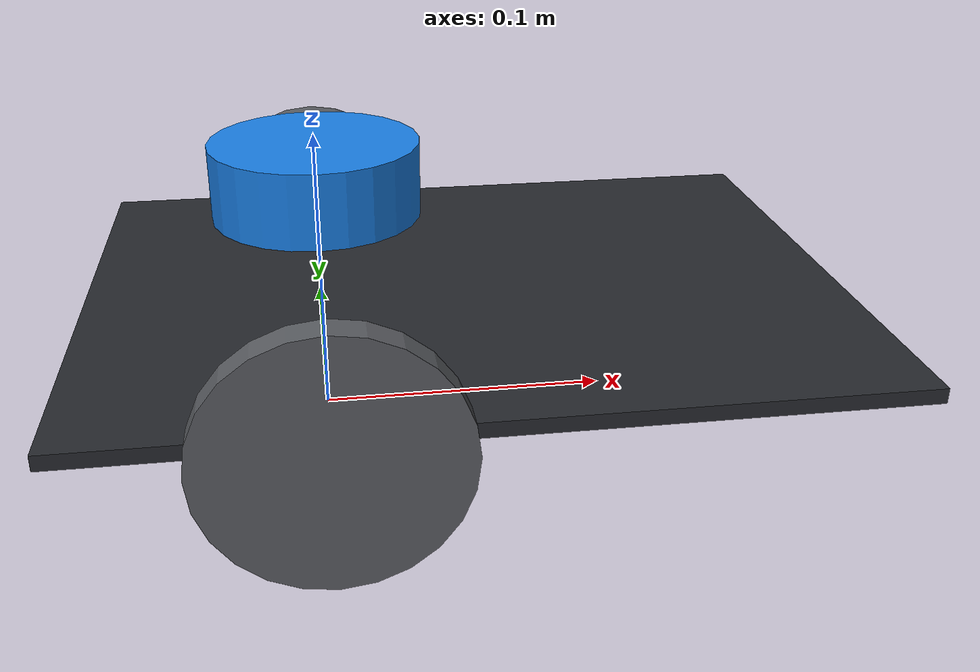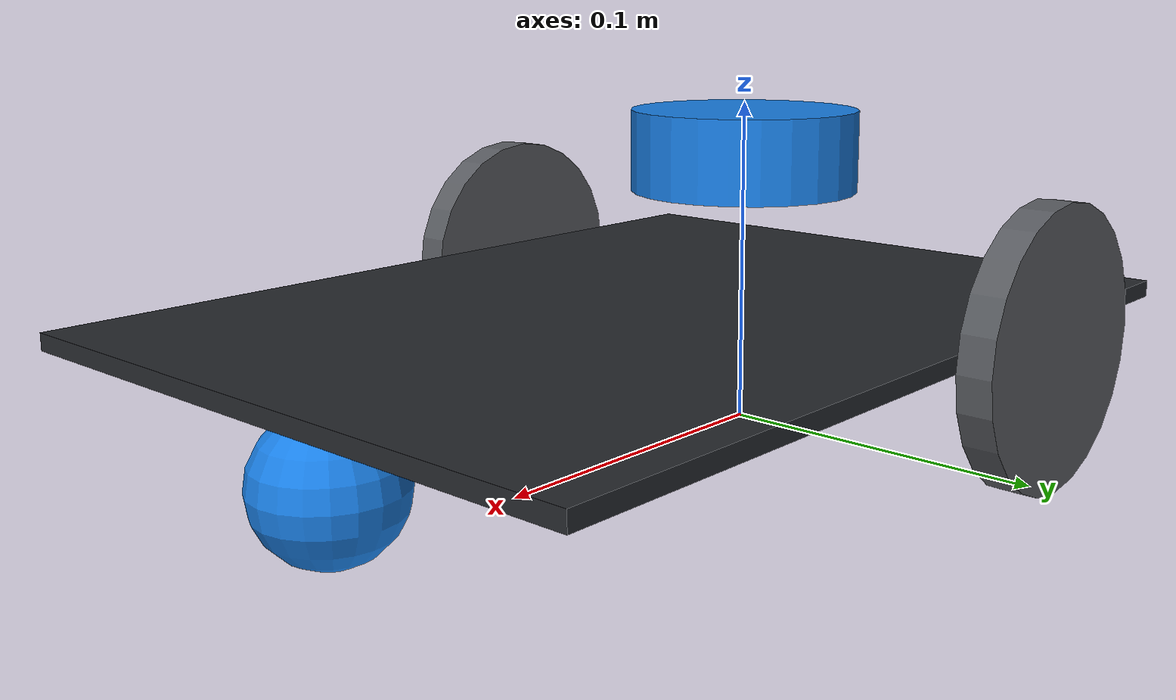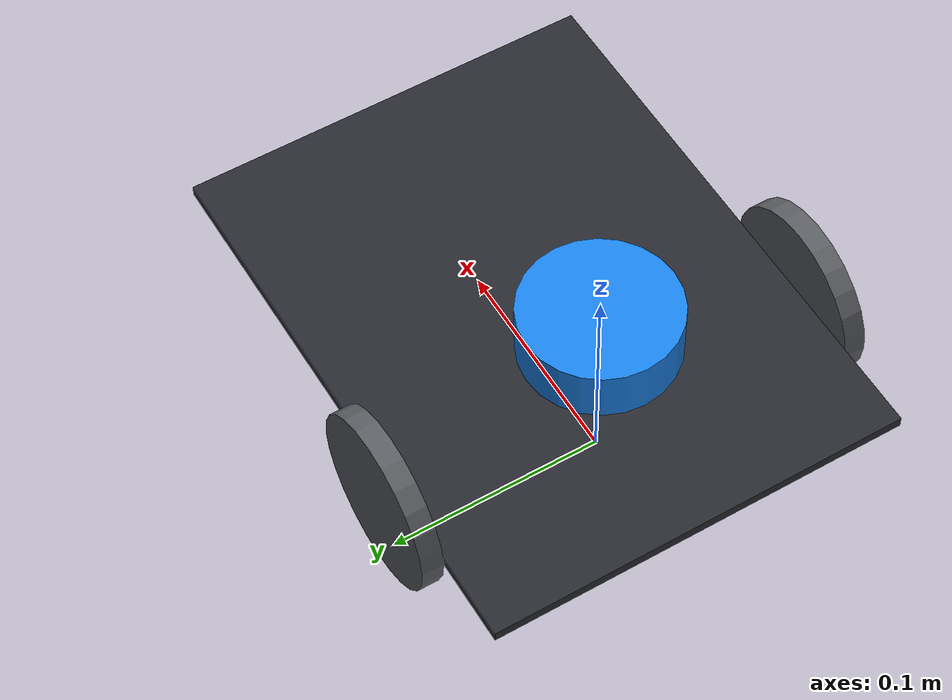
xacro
<?xml version="1.0"?>
<robot xmlns:xacro="http://www.ros.org/wiki/xacro" name="mapping_robot">
  <xacro:include filename="dimensions.xacro"/>
  <xacro:include filename="simulation_parameters.xacro"/>
  <xacro:arg name="simulation" default="false"/>
  <xacro:arg name="hardware" default="false"/>
  <xacro:arg name="serial_device" default=""/>
  <xacro:arg name="controllers_file" default=""/>
  <xacro:arg name="include_lidar" default="true"/>
  <xacro:arg name="laser_x" default="0.0"/>
  <xacro:arg name="laser_y" default="0.0"/>
  <xacro:arg name="laser_z" default="0.10"/>
  <xacro:arg name="laser_yaw" default="0.0"/>

  <material name="chassis_black"><color rgba="0.15 0.16 0.18 1"/></material>
  <material name="tire_gray"><color rgba="0.35 0.36 0.38 1"/></material>
  <material name="front_blue"><color rgba="0.1 0.5 0.9 1"/></material>
  <link name="base_link"/>
  <!-- A thin rectangular approximation of the whole length, including front
       extension. Plate thickness is visual-only and unmeasured. -->
  <link name="chassis">
    <xacro:box_inertia mass="${total_mass - 2*wheel_mass - caster_mass - (laser_mass if '$(arg include_lidar)' == 'true' else 0)}"
      x="${front_extent + rear_extent}" y="${wheel_separation - wheel_width}"
      z="${body_inertia_height}" com_z="${body_com_z}"/>
    <visual>
      <geometry><box size="${front_extent + rear_extent} ${wheel_separation - wheel_width} ${plate_thickness}"/></geometry>
      <material name="chassis_black"/>
    </visual>
    <collision>
      <geometry><box size="${front_extent + rear_extent} ${wheel_separation - wheel_width} ${plate_thickness}"/></geometry>
    </collision>
  </link>
  <joint name="chassis_joint" type="fixed">
    <parent link="base_link"/><child link="chassis"/>
    <origin xyz="${(front_extent - rear_extent)/2} 0 ${chassis_clearance + plate_thickness/2}"/>
  </joint>

  <xacro:macro name="wheel" params="side sign">
    <link name="${side}_wheel">
      <xacro:cylinder_inertia mass="${wheel_mass}" radius="${wheel_radius}"
        length="${wheel_width}" rpy="${pi/2} 0 0"/>
      <visual>
        <origin rpy="${pi/2} 0 0"/>
        <geometry><cylinder radius="${wheel_radius}" length="${wheel_width}"/></geometry>
        <material name="tire_gray"/>
      </visual>
      <collision>
        <origin rpy="${pi/2} 0 0"/>
        <geometry><cylinder radius="${wheel_radius}" length="${wheel_width}"/></geometry>
      </collision>
    </link>
    <joint name="${side}_wheel_joint" type="continuous">
      <parent link="base_link"/><child link="${side}_wheel"/>
      <origin xyz="0 ${sign * wheel_separation/2} ${wheel_radius}"/>
      <axis xyz="0 1 0"/>
      <limit effort="${wheel_torque_limit}" velocity="${wheel_velocity_limit}"/>
    </joint>
  </xacro:macro>
  <xacro:wheel side="left" sign="1"/>
  <xacro:wheel side="right" sign="-1"/>

  <!-- Fixed sphere depicts the front support; size/position are provisional. -->
  <link name="caster">
    <inertial><mass value="${caster_mass}"/>
      <inertia ixx="${0.4*caster_mass*caster_radius**2}" ixy="0" ixz="0"
        iyy="${0.4*caster_mass*caster_radius**2}" iyz="0" izz="${0.4*caster_mass*caster_radius**2}"/>
    </inertial>
    <visual><geometry><sphere radius="${caster_radius}"/></geometry><material name="front_blue"/></visual>
    <collision><geometry><sphere radius="${caster_radius}"/></geometry></collision>
  </link>
  <joint name="caster_joint" type="fixed">
    <parent link="base_link"/><child link="caster"/>
    <origin xyz="${front_extent - caster_radius} 0 ${caster_radius}"/>
  </joint>

  <!-- Provisional user-authorized mount: centered, scan plane 6 cm above axles.
       Body size is a visual approximation; confirm mount before real mapping. -->
  <xacro:if value="$(arg include_lidar)">
    <link name="laser">
      <xacro:cylinder_inertia mass="${laser_mass}" radius="${laser_radius}"
        length="${laser_body_height}" com_z="${-laser_body_height/2 - 0.002}"/>
      <visual>
        <!-- Keep the visual below the scan plane to avoid self-obstruction. -->
        <origin xyz="0 0 ${-laser_body_height/2 - 0.002}"/>
        <geometry><cylinder radius="${laser_radius}" length="${laser_body_height}"/></geometry>
        <material name="front_blue"/>
      </visual>
    </link>
    <joint name="laser_joint" type="fixed">
      <parent link="base_link"/><child link="laser"/>
      <origin xyz="$(arg laser_x) $(arg laser_y) $(arg laser_z)" rpy="0 0 $(arg laser_yaw)"/>
    </joint>
  </xacro:if>
  <!-- Invalid dual-backend requests deliberately fail Xacro expansion. -->
  <xacro:if value="$(arg simulation)">
    <xacro:if value="$(arg hardware)"><xacro:invalid_dual_control_backend/></xacro:if>
  </xacro:if>
  <xacro:if value="$(arg hardware)">
    <xacro:include filename="hardware.xacro"/>
  </xacro:if>
  <xacro:if value="$(arg simulation)">
    <xacro:include filename="gazebo.xacro"/>
  </xacro:if>
</robot>

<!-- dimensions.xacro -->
<robot xmlns:xacro="http://www.ros.org/wiki/xacro">
  <!-- Builder-reported dimensions, 2026-09-06, after motor relocation. -->
  <xacro:property name="wheel_radius" value="0.040"/>
  <xacro:property name="wheel_separation" value="0.205"/>
  <xacro:property name="outer_width" value="0.215"/>
  <!-- Inferred from outer width minus separation; assumes identical tires. -->
  <xacro:property name="wheel_width" value="${outer_width - wheel_separation}"/>
  <xacro:property name="front_extent" value="0.180"/>
  <xacro:property name="rear_extent" value="0.080"/>
  <!-- User-authorized clearance assumption; not a physical measurement. -->
  <xacro:property name="chassis_clearance" value="0.040"/>
  <!-- Visual approximations, not measured chassis/caster geometry. -->
  <xacro:property name="plate_thickness" value="0.005"/>
  <xacro:property name="caster_radius" value="0.020"/>
</robot>

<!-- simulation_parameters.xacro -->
<robot xmlns:xacro="http://www.ros.org/wiki/xacro">
  <!-- All values here are simulation estimates, NOT measured motor/sensor specs. -->
  <xacro:property name="total_mass" value="1.6"/>
  <xacro:property name="wheel_mass" value="0.08"/>
  <xacro:property name="caster_mass" value="0.04"/>
  <xacro:property name="laser_mass" value="0.17"/>
  <xacro:property name="laser_radius" value="0.035"/>
  <xacro:property name="laser_body_height" value="0.025"/>
  <xacro:property name="body_inertia_height" value="0.08"/>
  <xacro:property name="body_com_z" value="0.03"/>
  <xacro:property name="wheel_torque_limit" value="0.3"/>
  <xacro:property name="wheel_velocity_limit" value="12.5"/>
  <xacro:property name="wheel_friction" value="0.8"/>
  <xacro:property name="caster_friction" value="0.001"/>
  <xacro:property name="scan_hz" value="10"/>
  <xacro:property name="scan_samples" value="360"/>
  <xacro:property name="scan_min" value="0.15"/>
  <xacro:property name="scan_max" value="6.0"/>
  <xacro:property name="scan_noise" value="0.01"/>

  <xacro:macro name="box_inertia" params="mass x y z com_z:=0">
    <inertial>
      <origin xyz="0 0 ${com_z}"/>
      <mass value="${mass}"/>
      <inertia ixx="${mass*(y*y+z*z)/12}" ixy="0" ixz="0"
               iyy="${mass*(x*x+z*z)/12}" iyz="0" izz="${mass*(x*x+y*y)/12}"/>
    </inertial>
  </xacro:macro>
  <xacro:macro name="cylinder_inertia" params="mass radius length rpy:='0 0 0' com_z:=0">
    <inertial>
      <origin xyz="0 0 ${com_z}" rpy="${rpy}"/>
      <mass value="${mass}"/>
      <inertia ixx="${mass*(3*radius*radius+length*length)/12}" ixy="0" ixz="0"
               iyy="${mass*(3*radius*radius+length*length)/12}" iyz="0" izz="${mass*radius*radius/2}"/>
    </inertial>
  </xacro:macro>
</robot>
